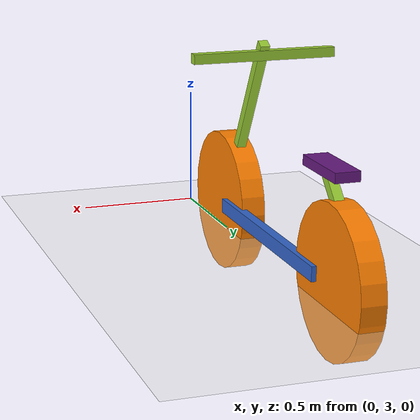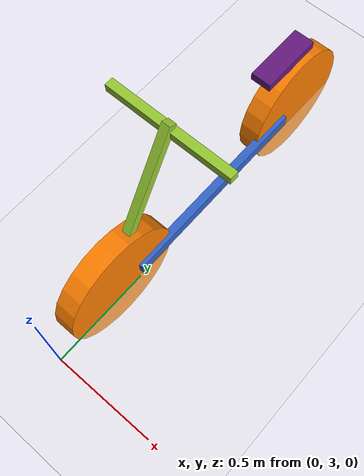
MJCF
<mujoco>
    <worldbody>
        <light diffuse="0.8 0.8 0.8" pos="0 0 10" dir="0 0 -1"/>

        <!-- Ground plane with a neutral color -->
        <geom type="plane" size="10 10 0.05" rgba="0.95 0.95 0.95 1"/>

        <!-- Bicycle Frame -->
        <body name="frame" pos="0 4 0.1" euler="90 90 90">
            <joint type="free"/>
            <geom type="box" size="0.03 0.5 0.02" rgba="0.2 0.4 0.8 1"/>

			<!-- Wheels -->
            <body name="front_wheel" pos="0 0.6 -0.05">
                <joint name="front_wheel_joint" type="hinge" axis="0 0 1" pos="0 0 0"/>
                <geom type="cylinder" size="0.3 0.05" rgba="1 0.5 0 1"/>
            </body>

            <body name="rear_wheel" pos="0 -0.6 -0.05">
                <joint name="rear_wheel_joint" type="hinge" axis="0 0 1" pos="0 0 0"/>
                <geom type="cylinder" size="0.3 0.05" rgba="1 0.5 0 1"/>
            </body>

			<!-- Front Handle -->
            <body name="handlebar_stem" pos="0.7 0.2 -0.05" euler="0 90 90">
                <geom type="box" size="0.02 0.3 0.02" rgba="0.6 0.8 0.2 1"/>
            </body>

            <body name="handlebars" pos="0.4 0.4 -0.05" euler="0 0 150">
                <geom type="box" size="0.4 0.02 0.02" rgba="0.6 0.8 0.2 1"/>
            </body>

			<!-- Back Seat -->
            <body name="saddle" pos="0.4 -0.5 -0.05" euler="0 90 90">
				<body name="connect" pos="-0.05 0 -0.1" euler="0 135 90">
					<geom type="box" size="0.02 0.1 0.02" rgba="0.6 0.8 0.2 1"/>
				</body>
					<geom type="box" size="0.15 0.05 0.02" rgba="0.4 0.1 0.5 1"/>
				</body>
			</body>
	</worldbody>

	<actuator>
		<!-- Actuators for wheels -->
		<velocity joint="front_wheel_joint" kv="1"/>
		<velocity joint="rear_wheel_joint" kv="1"/>
	</actuator>
</mujoco>
